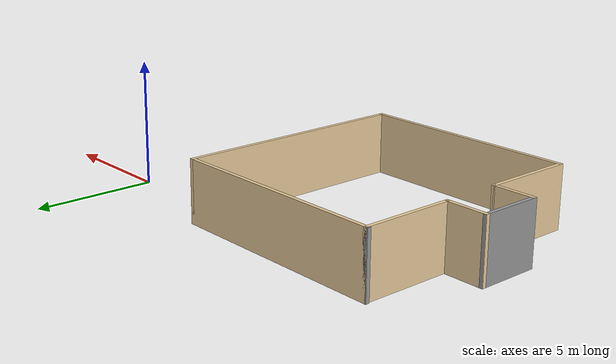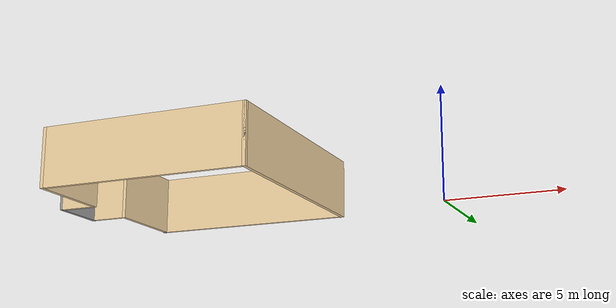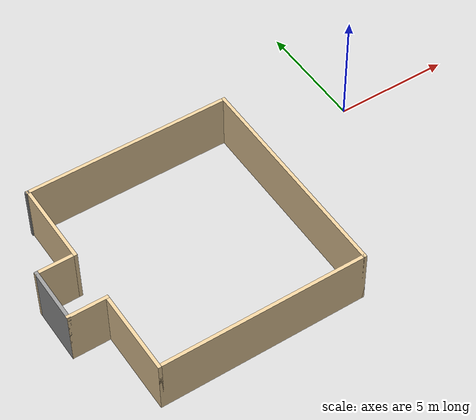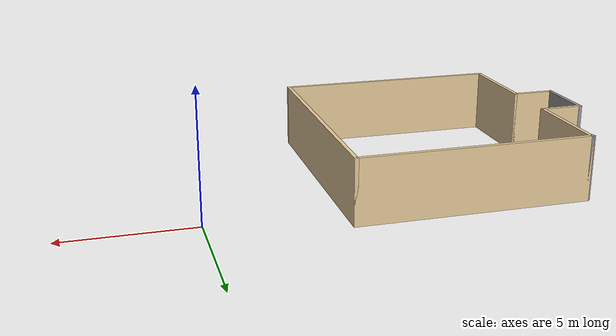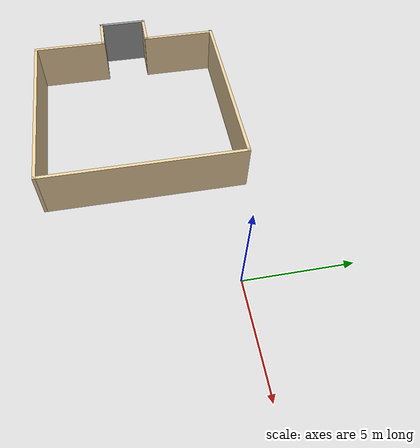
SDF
<?xml version='1.0'?>
<sdf version='1.7'>
  <model name='Garage'>
    <pose>-7.79464 -3.41709 0 0 -0 0</pose>
    <link name='Wall_1'>
      <collision name='Wall_1_Collision'>
        <geometry>
          <box>
            <size>1.70348 0.15 2.5</size>
          </box>
        </geometry>
        <pose>0 0 1.25 0 -0 0</pose>
      </collision>
      <visual name='Wall_1_Visual'>
        <pose>0 0 1.25 0 -0 0</pose>
        <geometry>
          <box>
            <size>1.70348 0.15 2.5</size>
          </box>
        </geometry>
        <material>
          <script>
            <uri>file://media/materials/scripts/gazebo.material</uri>
            <name>Gazebo/Grey</name>
          </script>
          <ambient>0.921569 0.807843 0.615686 1</ambient>
        </material>
        <meta>
          <layer>0</layer>
        </meta>
      </visual>
      <pose>-6.9429 1.175 0 0 -0 -3.14159</pose>
    </link>
    <link name='Wall_12'>
      <collision name='Wall_12_Collision'>
        <geometry>
          <box>
            <size>0.15 0.15 2.5</size>
          </box>
        </geometry>
        <pose>0 0 1.25 0 -0 0</pose>
      </collision>
      <visual name='Wall_12_Visual'>
        <pose>0 0 1.25 0 -0 0</pose>
        <geometry>
          <box>
            <size>0.15 0.15 2.5</size>
          </box>
        </geometry>
        <material>
          <script>
            <uri>file://media/materials/scripts/gazebo.material</uri>
            <name>Gazebo/Grey</name>
          </script>
          <ambient>1 1 1 1</ambient>
        </material>
        <meta>
          <layer>0</layer>
        </meta>
      </visual>
      <pose>-6.16616 4.775 0 0 -0 0</pose>
    </link>
    <link name='Wall_18'>
      <collision name='Wall_18_Collision'>
        <geometry>
          <box>
            <size>9 0.15 2.5</size>
          </box>
        </geometry>
        <pose>0 0 1.25 0 -0 0</pose>
      </collision>
      <visual name='Wall_18_Visual'>
        <pose>0 0 1.25 0 -0 0</pose>
        <geometry>
          <box>
            <size>9 0.15 2.5</size>
          </box>
        </geometry>
        <material>
          <script>
            <uri>file://media/materials/scripts/gazebo.material</uri>
            <name>Gazebo/Grey</name>
          </script>
          <ambient>0.921569 0.807843 0.615686 1</ambient>
        </material>
        <meta>
          <layer>0</layer>
        </meta>
      </visual>
      <pose>-1.69464 4.775 0 0 -0 0</pose>
    </link>
    <link name='Wall_19'>
      <collision name='Wall_19_Collision'>
        <geometry>
          <box>
            <size>9.7 0.15 2.5</size>
          </box>
        </geometry>
        <pose>0 0 1.25 0 -0 0</pose>
      </collision>
      <visual name='Wall_19_Visual'>
        <pose>0 0 1.25 0 -0 0</pose>
        <geometry>
          <box>
            <size>9.7 0.15 2.5</size>
          </box>
        </geometry>
        <material>
          <script>
            <uri>file://media/materials/scripts/gazebo.material</uri>
            <name>Gazebo/Grey</name>
          </script>
          <ambient>0.921569 0.807843 0.615686 1</ambient>
        </material>
        <meta>
          <layer>0</layer>
        </meta>
      </visual>
      <pose>2.73036 0 0 0 -0 -1.5708</pose>
    </link>
    <link name='Wall_2'>
      <pose>-7.71964 0 0 0 -0 -1.5708</pose>
      <visual name='Wall_2_Visual_0'>
        <pose>0 0 1.25 0 -0 0</pose>
        <geometry>
          <box>
            <size>2.5 0.15 2.5</size>
          </box>
        </geometry>
        <material>
          <script>
            <uri>file://media/materials/scripts/gazebo.material</uri>
            <name>Gazebo/Grey</name>
          </script>
          <ambient>1 1 1 1</ambient>
        </material>
        <meta>
          <layer>0</layer>
        </meta>
      </visual>
      <collision name='Wall_2_Collision_0'>
        <geometry>
          <box>
            <size>2.5 0.15 2.5</size>
          </box>
        </geometry>
        <pose>0 0 1.25 0 -0 0</pose>
      </collision>
      <visual name='Wall_2_Visual_1'>
        <pose>1.23522 0 1.25 0 -0 0</pose>
        <geometry>
          <box>
            <size>0.029561 0.15 2.5</size>
          </box>
        </geometry>
        <material>
          <script>
            <uri>file://media/materials/scripts/gazebo.material</uri>
            <name>Gazebo/Grey</name>
          </script>
          <ambient>1 1 1 1</ambient>
        </material>
        <meta>
          <layer>0</layer>
        </meta>
      </visual>
      <collision name='Wall_2_Collision_1'>
        <geometry>
          <box>
            <size>0.029561 0.15 2.5</size>
          </box>
        </geometry>
        <pose>1.23522 0 1.25 0 -0 0</pose>
      </collision>
    </link>
    <link name='Wall_21'>
      <collision name='Wall_21_Collision'>
        <geometry>
          <box>
            <size>3.75 0.15 2.5</size>
          </box>
        </geometry>
        <pose>0 0 1.25 0 -0 0</pose>
      </collision>
      <visual name='Wall_21_Visual'>
        <pose>0 0 1.25 0 -0 0</pose>
        <geometry>
          <box>
            <size>3.75 0.15 2.5</size>
          </box>
        </geometry>
        <material>
          <script>
            <uri>file://media/materials/scripts/gazebo.material</uri>
            <name>Gazebo/Grey</name>
          </script>
          <ambient>0.921569 0.807843 0.615686 1</ambient>
        </material>
        <meta>
          <layer>0</layer>
        </meta>
      </visual>
      <pose>-6.11964 2.975 0 0 -0 -1.5708</pose>
    </link>
    <link name='Wall_7'>
      <collision name='Wall_7_Collision'>
        <geometry>
          <box>
            <size>1.75 0.15 2.5</size>
          </box>
        </geometry>
        <pose>0 0 1.25 0 -0 0</pose>
      </collision>
      <visual name='Wall_7_Visual'>
        <pose>0 0 1.25 0 -0 0</pose>
        <geometry>
          <box>
            <size>1.75 0.15 2.5</size>
          </box>
        </geometry>
        <material>
          <script>
            <uri>file://media/materials/scripts/gazebo.material</uri>
            <name>Gazebo/Grey</name>
          </script>
          <ambient>0.921569 0.807843 0.615686 1</ambient>
        </material>
        <meta>
          <layer>0</layer>
        </meta>
      </visual>
      <pose>-6.91964 -1.175 0 0 -0 0</pose>
    </link>
    <link name='Wall_8'>
      <collision name='Wall_8_Collision'>
        <geometry>
          <box>
            <size>3.75 0.15 2.5</size>
          </box>
        </geometry>
        <pose>0 0 1.25 0 -0 0</pose>
      </collision>
      <visual name='Wall_8_Visual'>
        <pose>0 0 1.25 0 -0 0</pose>
        <geometry>
          <box>
            <size>3.75 0.15 2.5</size>
          </box>
        </geometry>
        <material>
          <script>
            <uri>file://media/materials/scripts/gazebo.material</uri>
            <name>Gazebo/Grey</name>
          </script>
          <ambient>0.921569 0.807843 0.615686 1</ambient>
        </material>
        <meta>
          <layer>0</layer>
        </meta>
      </visual>
      <pose>-6.11964 -2.975 0 0 -0 -1.5708</pose>
    </link>
    <link name='Wall_9'>
      <collision name='Wall_9_Collision'>
        <geometry>
          <box>
            <size>9 0.15 2.5</size>
          </box>
        </geometry>
        <pose>0 0 1.25 0 -0 0</pose>
      </collision>
      <visual name='Wall_9_Visual'>
        <pose>0 0 1.25 0 -0 0</pose>
        <geometry>
          <box>
            <size>9 0.15 2.5</size>
          </box>
        </geometry>
        <material>
          <script>
            <uri>file://media/materials/scripts/gazebo.material</uri>
            <name>Gazebo/Grey</name>
          </script>
          <ambient>0.921569 0.807843 0.615686 1</ambient>
        </material>
        <meta>
          <layer>0</layer>
        </meta>
      </visual>
      <pose>-1.69464 -4.775 0 0 -0 0</pose>
    </link>
    <static>1</static>
  </model>
</sdf>
